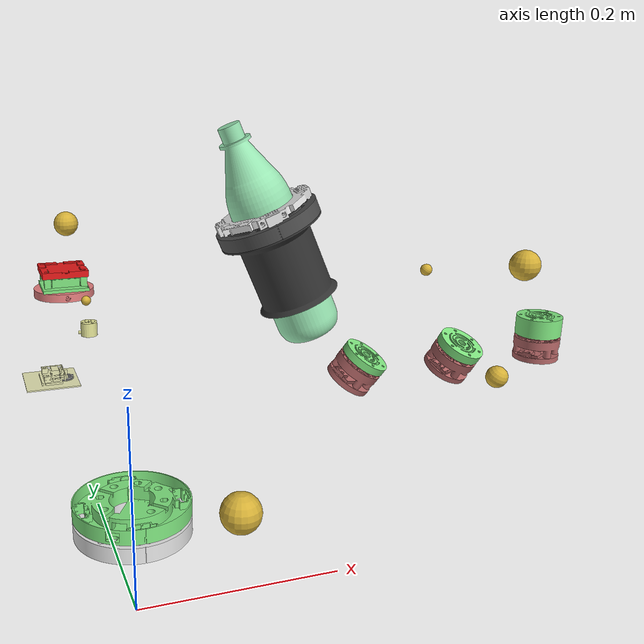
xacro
<?xml version="1.0" ?>
<robot
       xmlns:xacro="http://www.ros.org/wiki/xacro"
       name="all_ft_demo">

   <!-- combined URDF that instantiates all printed_ft sensors in one model -->

  <xacro:include filename="$(find tams_printed_ft)/urdf/ft_payload.xacro" />
  <xacro:include filename="$(find tams_printed_ft)/urdf/ft_sensor.xacro" />

  <xacro:include filename="$(find tams_printed_ft)/urdf/ati_nano17_ft.xacro" />

  <xacro:include filename="$(find tams_printed_ft)/urdf/adjustable_ft.xacro" />
  <xacro:include filename="$(find tams_printed_ft)/urdf/block_ft.xacro" />
  <xacro:include filename="$(find tams_printed_ft)/urdf/bottle_ft.xacro" />
  <xacro:include filename="$(find tams_printed_ft)/urdf/hex9904_ft.xacro" />
  <xacro:include filename="$(find tams_printed_ft)/urdf/pushing_box_ft.xacro" />

  <link name="world" />

  <!-- adjustable ft with 1.5kg payload -->

  <xacro:ft_control_plugin name="adjustable_ft" />

  <xacro:ft_sensor_plugin
     name="adjustable_ft"
     joint="sensor_joint"
     rate="200"
     topic="wrench" >
  </xacro:ft_sensor_plugin>

  <xacro:adjustable_ft name="adjustable_ft" />

  <joint name="world_adjustable_ft_joint" type="fixed">
    <parent link="world" />
    <child link="adjustable_ft" />
    <origin xyz="0 0 0.1" rpy="0 0 0" />
  </joint>

  <xacro:ft_payload_sphere  name="m1500g" mass="1.5" diameter="0.04">
    <cog_origin xyz="0 0 0" rpy="0 0 0"/>
  </xacro:ft_payload_sphere>

  <joint name="adjustable_ft_payload_joint" type="fixed">
    <parent link="adjustable_ft_tool_ring" />
    <child link="m1500g" />
    <origin xyz="0.1 0 0" rpy="0 0 0" />
  </joint>

  <!-- ATi nano17 reference sensor with 200g payload -->

  <xacro:ft_control_plugin name="ati_nano17_ft" />

  <xacro:ft_sensor_plugin
     name="ati_nano17_ft"
     joint="sensor_joint"
     rate="200"
     topic="wrench" >
  </xacro:ft_sensor_plugin>

  <xacro:ati_nano17_ft name="ati_nano17_ft" />

  <joint name="world_ati_nano17_ft_joint" type="fixed">
    <parent link="world" />
    <child link="ati_nano17_ft" />
    <origin xyz="0 0.2 0.2" rpy="0 0 0" />
  </joint>

  <xacro:ft_payload_sphere  name="m200g" mass="0.2" diameter="0.01">
    <cog_origin xyz="0 0 0" rpy="0 0 0"/>
  </xacro:ft_payload_sphere>

  <joint name="ati_nano17_ft_payload_joint" type="fixed">
    <parent link="ati_nano17_ft_tool_mount" />
    <child link="m200g" />
    <origin xyz="0 0.01 0.02" rpy="0 0 0" />
  </joint>

  <!-- bottle_ft sensor with 450g payload  -->

  <xacro:ft_control_plugin name="bottle_ft" />

  <xacro:ft_sensor_plugin
     name="bottle_ft"
     joint="sensor_joint"
     rate="200"
     topic="wrench" >
  </xacro:ft_sensor_plugin>

  <xacro:bottle_ft name="bottle_ft" />

  <joint name="world_bottle_ft_joint" type="fixed">
    <parent link="world" />
    <child link="bottle_ft" />
    <origin xyz="0.2 0.2 0.3" rpy="0 0.4 3.0" />
  </joint>

  <xacro:bottle_ft_bottle_500ml  name="bottle_500ml" />

  <joint name="bottle_ft_bottle_joint" type="fixed">
    <parent link="bottle_ft_upper_ring" />
    <child link="bottle_500ml" />
    <origin xyz="0 0 0" rpy="0 0 0" />
  </joint>

  <!-- block_ft sensor with 500g payload  -->

  <xacro:ft_control_plugin name="block_ft" />

  <xacro:ft_sensor_plugin
     name="block_ft"
     joint="sensor_joint"
     rate="200"
     topic="wrench" >
  </xacro:ft_sensor_plugin>

  <xacro:block_ft name="block_ft" />

  <xacro:block_ft_m3207_adapter  name="block_ft_m3207_adapter_plate" />

  <joint name="world_block_ft_m3207_adapter_joint" type="fixed">
    <parent link="world" />
    <child link="block_ft_m3207_adapter_plate" />
    <origin xyz="0 0.4 ${0.2-0.01}" rpy="0 0 0" />
  </joint>

  <joint name="world_block_ft_joint" type="fixed">
    <parent link="world" />
    <child link="block_ft" />
    <origin xyz="0 0.4 0.2" rpy="0 0 0" />
  </joint>

  <xacro:ft_payload_sphere  name="m1100g" mass="1.100" diameter="0.03">
    <cog_origin xyz="0 0 0" rpy="0 0 0"/>
  </xacro:ft_payload_sphere>

  <joint name="block_ft_payload_joint" type="fixed">
    <parent link="block_ft_tool_mount" />
    <child link="m1100g" />
    <origin xyz="0.01 0.02 0.05" rpy="0 0 0" />
  </joint>

  <!-- Gazebo demo of the hex9904 sensor with 07mm hat and 73g payload. -->

  <xacro:ft_control_plugin name="hex9904_07mm_ft" />

  <xacro:ft_sensor_plugin
     name="hex9904_07mm_ft"
     joint="sensor_joint"
     rate="200"
     topic="wrench" >
  </xacro:ft_sensor_plugin>

  <xacro:hex9904_ft name="hex9904" hat="07mm"  hat_mass="0.075" hat_height="0.007" />

  <xacro:ft_payload_sphere  name="m73g" mass="0.073" diameter="0.01">
    <cog_origin xyz="0 0 0" rpy="0 0 0"/>
  </xacro:ft_payload_sphere>

  <joint name="world_hex9904_07mm_ft_joint" type="fixed">
    <parent link="world" />
    <child link="hex9904_07mm_ft" />
    <origin xyz="0.2 0 0.2" rpy="0.3 0.5 0" />
  </joint>

  <joint name="hex9904_07mm_ft_payload_joint" type="fixed">
    <parent link="hex9904_07mm_ft_tool_mount" />
    <child link="m73g" />
    <origin xyz="0 0.01 0.1" rpy="0 0 0" />
  </joint>

  <!-- Gazebo demo of the hex9904 sensor with 10mm hat and 156g payload. -->

  <xacro:ft_control_plugin name="hex9904_10mm_ft" />

  <xacro:ft_sensor_plugin
     name="hex9904_10mm_ft"
     joint="sensor_joint"
     rate="200"
     topic="wrench" >
  </xacro:ft_sensor_plugin>

  <xacro:hex9904_ft name="hex9904" hat="10mm"  hat_mass = "0.110" hat_height="0.01" />

  <xacro:ft_payload_sphere  name="m156g" mass="0.156" diameter="0.02">
    <cog_origin xyz="0 0 0" rpy="0 0 0"/>
  </xacro:ft_payload_sphere>

  <joint name="world_hex9904_10mm_ft_joint" type="fixed">
    <parent link="world" />
    <child link="hex9904_10mm_ft" />
    <origin xyz="0.3 0 0.20" rpy="0.4 0.3 0" />
  </joint>

  <joint name="hex9904_10mm_ft_payload_joint" type="fixed">
    <parent link="hex9904_10mm_ft_tool_mount" />
    <child link="m156g" />
    <origin xyz="0.03 -0.03 0" rpy="0 0 0" />
  </joint>

  <!-- Gazebo demo of the hex9904 sensor with 20mm hat. -->

  <xacro:ft_control_plugin name="hex9904_20mm_ft" />

  <xacro:ft_sensor_plugin
     name="hex9904_20mm_ft"
     joint="sensor_joint"
     rate="200"
     topic="wrench" >
  </xacro:ft_sensor_plugin>

  <xacro:hex9904_ft name="hex9904" hat="20mm"  hat_mass = "0.150" hat_height="0.02" />

  <xacro:ft_payload_sphere  name="m777g" mass="0.377" diameter="0.03">
    <cog_origin xyz="0 0 0" rpy="0 0 0"/>
  </xacro:ft_payload_sphere>

  <joint name="world_hex9904_20mm_ft_joint" type="fixed">
    <parent link="world" />
    <child link="hex9904_20mm_ft" />
    <origin xyz="0.4 0 0.20" rpy="0 0 0" />
  </joint>

  <joint name="hex9904_20mm_ft_payload_joint" type="fixed">
    <parent link="hex9904_20mm_ft_tool_mount" />
    <child link="m777g" />
    <origin xyz="0 0.03 0.05" rpy="0 0 0" />
  </joint>

  <!-- basic ROS+gazebo demo of the "pushing_box-ft" -->

  <xacro:ft_control_plugin name="pushing_box_ft" />

  <xacro:ft_sensor_plugin
     name="pushing_box_ft"
     joint="sensor_joint"
     rate="200"
     topic="wrench" >
  </xacro:ft_sensor_plugin>

  <xacro:pushing_box_ft name="pushing_box_ft" />

  <joint name="world_pushing_box_ft_joint" type="fixed">
    <parent link="world" />
    <child link="pushing_box_ft" />
    <origin xyz="0 0.6 0" rpy="0 0 0" />
  </joint>

</robot>

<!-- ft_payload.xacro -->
<robot
       xmlns:xacro="http://www.ros.org/wiki/xacro"
       name="ft_paylaod">

<!-- configurable payload for static force/torque tests -->

<xacro:macro name="ft_payload_sphere" params="name mass *cog_origin diameter">
  <link name="${name}">
    <inertial>
      <xacro:insert_block name="cog_origin" />
      <mass value="${mass}" />
      <inertia  ixx="0.001" ixy="0" ixz="0" iyy="0.001" iyz="0" izz="0.001" />
    </inertial>
    <visual>
      <xacro:insert_block name="cog_origin" />
      <material name="ft_payload_gold" > 212,175,55
        <color rgba="${212/255} ${175/255} ${55/255} 1.0" />
      </material>
      <geometry>
         <sphere radius="${diameter/2}" />
      </geometry>
    </visual>
    <collision>
      <xacro:insert_block name="cog_origin" />
      <geometry>
         <sphere radius="${diameter/2}" />
      </geometry>
    </collision>
  </link>

  <gazebo reference="${name}">
      <material>Gazebo/Gold</material>
      <turnGravityOff>false</turnGravityOff>
      <selfCollide>false</selfCollide>
      <!-- kp: stiffness kd: damping mu1, mu2: friction -->
      <mu1>100.0</mu1>
      <mu2>100.0</mu2>
      <kp>1000000.0</kp>
      <kd>1.0</kd>
  </gazebo>
</xacro:macro>

</robot>

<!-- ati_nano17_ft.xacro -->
<robot xmlns:xacro="http://www.ros.org/wiki/xacro">

	<!-- Common tools: PI, inertias of a cuboid and cylinder -->
	<xacro:property name="M_PI" value="3.1415926535897931"/>

	<xacro:macro name="cuboid_inertia_def" params="width height length mass">
	  <inertia ixx="${mass * (height * height + length * length) / 12}"
			 iyy="${mass * (width * width + length * length) / 12}"
			 izz="${mass * (width * width + height * height) / 12}"
			 ixy="0" iyz="0" ixz="0"/>
	</xacro:macro>

	<xacro:macro name="cylinder_inertia_def" params="radius length mass">
	  <inertia ixx="${mass * (3 * radius * radius + length * length) / 12}"
			 iyy="${mass * radius* radius / 2}"
			 izz="${mass * (3 * radius * radius + length * length) / 12}"
			 ixy="0" iyz="0" ixz="0"/>
	</xacro:macro>

	<xacro:macro name="ati_nano17_ft" params="name" >
    <link name="${name}">
			<inertial>
				<mass value="0.00907"/>
				<origin xyz="0 0 0.00725"  />
				<xacro:cylinder_inertia_def radius="0.085" length="0.0145" mass="0.00907"/>
			</inertial>
			<visual>
				<!-- origin xyz="0 0 0.00725" rpy="0 0 0"/ -->
				<origin xyz="0 0 0" rpy="0 0 0"/>
        <material name="ati_nano17_silver">
          <color rgba="0.9 0.9 0.6 1.0" />
        </material>
				<geometry>
					<mesh filename="package://tams_printed_ft/meshes/ati_nano17.dae"/>
					<!-- cylinder radius="0.0085" length="0.0145"/ -->
				</geometry>
			</visual>
			<collision>
				<origin xyz="0 0 0.00725" rpy="0 0 0"/>
				<geometry>
					<cylinder radius="0.0085" length="0.0145"/>
				</geometry>
			</collision>
    </link>

    <gazebo reference="${name}">
      <material>Gazebo/Silver</material>
      <turnGravityOff>false</turnGravityOff>
      <selfCollide>false</selfCollide>
      <!-- kp: stiffness kd: damping mu1, mu2: friction -->
      <mu1>100.0</mu1>
      <mu2>100.0</mu2>
      <kp>1000000.0</kp>
      <kd>1.0</kd>
   </gazebo>

    <link name="${name}_sensor_frame">
		  <origin xyz="0 0 0.0145" rpy="0 0 0"/>
	  </link>

    <!-- type=floating, no axis required? -->
    <joint name="${name}_sensor_joint" type="revolute">
      <parent link="${name}" />
      <child link="${name}_sensor_frame" />
      <origin xyz="0 0 ${0.011}" rpy="0 0 0" />

      <axis xyz="1 0 0" rpy="0 0 0" />
      <dynamics damping="1.01" friction="0.05" />
      <limit lower="-0.001" upper="0.001" effort="100" velocity="1" />
    </joint>

    <transmission name="${name}_sensor_joint_transmission">
      <type>transmission_interface/SimpleTransmission</type>
      <joint name="${name}_sensor_joint">
        <hardwareInterface>hardware_interface/EffortJointInterface</hardwareInterface>
      </joint>
      <actuator name="${name}_sensor_joint_motor">
        <hardwareInterface>hardware_interface/EffortJointInterface</hardwareInterface>
        <mechanicalReduction>1</mechanicalReduction>
      </actuator>
    </transmission>

    <link name="${name}_tool_mount" />

    <joint name="${name}_tool_mount_joint" type="fixed">
      <parent link="${name}_sensor_frame" />
      <child link="${name}_tool_mount" />
      <origin xyz="0 0 ${0.0035}" rpy="0 0 0" />
    </joint>

	</xacro:macro>

  <!-- 17mm x 5m height cylinder -->
	<xacro:macro name="nano17_tool_plate">
			<inertial>
				<mass value="0.002"/>
				<origin xyz="0 0 0.0025"  />
				<xacro:cylinder_inertia_def radius="0.085" length="0.005" mass="0.002"/>
			</inertial>
			<visual>
				<!-- origin xyz="0 0 0.00725" rpy="0 0 0"/ -->
				<origin xyz="0 0 0.0025" rpy="0 0 0"/>
				<geometry>
					<cylinder radius="0.0085" length="0.005"/>
				</geometry>
			</visual>
			<collision>
				<origin xyz="0 0 0.0025" rpy="0 0 0"/>
				<geometry>
					<cylinder radius="0.0085" length="0.005"/>
				</geometry>
			</collision>
	</xacro:macro>

</robot>

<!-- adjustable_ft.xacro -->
<robot
       xmlns:xacro="http://www.ros.org/wiki/xacro"
       name="adjustable_ft">

<xacro:macro name="adjustable_ft" params="name" >

  <link name="${name}">
    <inertial>
      <origin xyz="0 0 ${0.014/2}" />
      <mass value="0.7" />
      <inertia  ixx="0.0001" ixy="0" ixz="0" iyy="0.0001" iyz="0" izz="0.00005" />
      </inertial>
      <visual>
        <origin xyz="0 0 ${-0.018}" />
        <material name="dummy" >
          <color rgba="0.5 0.9 0.5 1.0" />
        </material>
        <geometry>
          <mesh filename="package://tams_printed_ft/meshes/adjustable_ft_upper_ring.dae" scale="0.001 0.001 0.001" />
        </geometry>
      </visual>
      <collision>
        <origin xyz="0 0 ${0.014/2}" />
        <geometry>
          <cylinder radius="${0.104/2}" length="0.014" />
        </geometry>
    </collision>
  </link>

  <gazebo reference="${name}">
      <material>Gazebo/Green</material>
      <turnGravityOff>false</turnGravityOff>
      <selfCollide>false</selfCollide>
      <!-- kp: stiffness kd: damping mu1, mu2: friction -->
      <mu1>100.0</mu1>
      <mu2>100.0</mu2>
      <kp>1000000.0</kp>
      <kd>1.0</kd>
  </gazebo>

  <link name="${name}_tool_ring">
    <inertial>
      <origin xyz="1 0 ${0.018/2}" />
      <mass value="0.15" />
      <inertia  ixx="0.00002" ixy="0" ixz="0" iyy="0.00002" iyz="0" izz="0.00001" />
    </inertial>
    <visual>
        <origin xyz="0 0 0" />
        <material name="silver" >
          <color rgba="0.9 0.9 0.9 1.0" />
        </material>
        <geometry>
          <mesh filename="package://tams_printed_ft/meshes/adjustable_ft_base_ring.dae" scale="0.001 0.001 0.001" />
        </geometry>
      </visual>
      <collision>
        <origin xyz="0 0 ${0.016/2}" />
        <geometry>
          <cylinder radius="${0.104/2}" length="0.016" />
        </geometry>
      </collision>
  </link>

  <gazebo reference="${name}_tool_ring">
      <material>Gazebo/White</material>
      <turnGravityOff>false</turnGravityOff>
      <selfCollide>false</selfCollide>
      <!-- kp: stiffness kd: damping mu1, mu2: friction -->
      <mu1>100.0</mu1>
      <mu2>100.0</mu2>
      <kp>1000000.0</kp>
      <kd>1.0</kd>
  </gazebo>

  <!-- fucking controller requires a namespace followed by SLASH -->
  <!-- type=floating, no axis required -->
  <joint name="${name}_sensor_joint" type="revolute">
    <parent link="adjustable_ft" />
    <child link="adjustable_ft_tool_ring" />
    <origin xyz="0 0 ${-0.018}" rpy="0 0 0" />

    <axis xyz="1 0 0" rpy="0 0 0" />
    <dynamics damping="1.01" friction="0.05" />
    <limit lower="-0.02" upper="0.02" effort="100" velocity="1" />
    <safety_controller soft_lower_limit="-0.001" soft_upper_limit="0.001" k_position="1" k_velocity="1" />
  </joint>

  <transmission name="${name}_sensor_joint_transmission">
    <type>transmission_interface/SimpleTransmission</type>
    <joint name="${name}_sensor_joint">
      <hardwareInterface>hardware_interface/EffortJointInterface</hardwareInterface>
    </joint>
    <actuator name="${name}_sensor_joint_motor">
      <hardwareInterface>hardware_interface/EffortJointInterface</hardwareInterface>
      <mechanicalReduction>1</mechanicalReduction>
    </actuator>
  </transmission>

</xacro:macro>

</robot>

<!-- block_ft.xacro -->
<robot
       xmlns:xacro="http://www.ros.org/wiki/xacro"
       name="block_ft">

<xacro:macro name="block_ft" params="name" >

  <link name="${name}">
    <inertial>
      <origin xyz="0 0 ${0.009}" />
      <mass value="0.15" />
      <inertia  ixx="0.0002" ixy="0" ixz="0" iyy="0.0002" iyz="0" izz="0.0002" />
      </inertial>
      <visual>
        <origin xyz="0 0 0" />
        <material name="green_pla_filament" >
          <color rgba="0.5 0.9 0.5 1.0" />
        </material>
        <geometry>
          <mesh filename="package://tams_printed_ft/meshes/block_ft_base_and_elastic.dae" scale="0.001 0.001 0.001" />
        </geometry>
      </visual>
      <collision>
        <!-- 2mm shorter to provide visual gap between base and tool parts -->
        <origin xyz="0 0 ${0.008}" />
        <geometry>
          <box size="0.056 0.056 0.016" />
        </geometry>
    </collision>
  </link>

  <gazebo reference="${name}">
      <material>Gazebo/Green</material>
      <turnGravityOff>false</turnGravityOff>
      <selfCollide>false</selfCollide>
      <!-- kp: stiffness kd: damping mu1, mu2: friction -->
      <mu1>100.0</mu1>
      <mu2>100.0</mu2>
      <kp>1000000.0</kp>
      <kd>1.0</kd>
  </gazebo>

  <link name="${name}_tool_plate">
    <inertial>
      <origin xyz="1 0 ${0.008/2}" />
      <mass value="0.05" />
      <inertia  ixx="0.00001" ixy="0" ixz="0" iyy="0.00001" iyz="0" izz="0.00002" />
    </inertial>
    <visual>
        <origin xyz="0 0 -0.018" /> <!-- compensate mesh z-offset -->
        <material name="red_pla_filament" >
          <color rgba="0.9 0.1 0.1 1.0" />
        </material>
        <geometry>
          <mesh filename="package://tams_printed_ft/meshes/block_ft_cover_ring_and_pattern_plate.dae" scale="0.001 0.001 0.001" />
        </geometry>
      </visual>
      <collision>
        <origin xyz="0 0 ${0.008/2}" />
        <geometry>
          <box size="0.056 0.056 0.008" />
        </geometry>
      </collision>
  </link>

  <gazebo reference="${name}_tool_plate">
      <material>Gazebo/Red</material>
      <turnGravityOff>false</turnGravityOff>
      <selfCollide>false</selfCollide>
      <!-- kp: stiffness kd: damping mu1, mu2: friction -->
      <mu1>100.0</mu1>
      <mu2>100.0</mu2>
      <kp>1000000.0</kp>
      <kd>1.0</kd>
  </gazebo>

  <!-- type=floating, no axis required -->
  <joint name="${name}_sensor_joint" type="revolute">
    <parent link="${name}" />
    <child link="${name}_tool_plate" />
    <origin xyz="0 0 ${0.018}" rpy="0 0 0" />

    <axis xyz="1 0 0" rpy="0 0 0" />
    <dynamics damping="1.01" friction="0.05" />
    <limit lower="-0.02" upper="0.02" effort="100" velocity="1" />
    <safety_controller soft_lower_limit="-0.001" soft_upper_limit="0.001" k_position="1" k_velocity="1" />
  </joint>

  <transmission name="${name}_sensor_joint_transmission">
    <type>transmission_interface/SimpleTransmission</type>
    <joint name="${name}_sensor_joint">
      <hardwareInterface>hardware_interface/EffortJointInterface</hardwareInterface>
    </joint>
    <actuator name="${name}_sensor_joint_motor">
      <hardwareInterface>hardware_interface/EffortJointInterface</hardwareInterface>
      <mechanicalReduction>1</mechanicalReduction>
    </actuator>
  </transmission>

  <link name="${name}_tool_mount" />

  <joint name="${name}_tool_mount_joint" type="fixed">
    <parent link="${name}_tool_plate" />
    <child link="${name}_tool_mount" />
    <origin xyz="0 0 ${0.008}" rpy="0 0 0" />
  </joint>

</xacro:macro>

<!-- model of the d=74 h=10 two-part inner/outer adapter plate for the Sunrise M3207 sensor -->
<xacro:macro name="block_ft_m3207_adapter" params="name" >

  <link name="${name}">
    <inertial>
      <origin xyz="0 0 0.005" />
      <mass value="0.10" />
      <inertia  ixx="0.0001" ixy="0" ixz="0" iyy="0.0001" iyz="0" izz="0.0002" />
      </inertial>
      <visual>
        <origin xyz="0 0 0.01" /> <!-- mesh origin is at the top -->
        <material name="red_pla_filament" >
          <color rgba="0.9 0.5 0.5 1.0" />
        </material>
        <geometry>
          <mesh filename="package://tams_printed_ft/meshes/block_ft_sunrise_mounting_plate_74x10.dae" scale="0.001 0.001 0.001" />
        </geometry>
      </visual>
      <collision>
        <!-- 2mm shorter to provide visual gap between base and tool parts -->
        <origin xyz="0 0 0.005" />
        <geometry>
          <cylinder radius="${0.074/2}" length="0.01" />
        </geometry>
    </collision>
  </link>

  <gazebo reference="${name}">
      <material>Gazebo/Gray</material>
      <turnGravityOff>false</turnGravityOff>
      <selfCollide>false</selfCollide>
      <!-- kp: stiffness kd: damping mu1, mu2: friction -->
      <mu1>100.0</mu1>
      <mu2>100.0</mu2>
      <kp>1000000.0</kp>
      <kd>1.0</kd>
  </gazebo>

</xacro:macro>

</robot>

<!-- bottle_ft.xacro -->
<robot
       xmlns:xacro="http://www.ros.org/wiki/xacro"
       name="bottle_ft">

<xacro:macro name="bottle_ft" params="name" >

  <link name="${name}">
    <!-- base ring height: outer 15mm, inner 18mm, fins~22mm, diameter 114mm -->
    <inertial>
      <origin xyz="0 0 ${0.016/2}" /> <!-- CoG is lower than total height -->
      <mass value="0.2" />
      <inertia  ixx="0.0001" ixy="0" ixz="0" iyy="0.0001" iyz="0" izz="0.00005" />
    </inertial>
    <visual>
      <origin xyz="0 0 0" />
      <material name="bottle_ft_gray" >
        <color rgba="0.3 0.3 0.3 1.0" />
      </material>
      <geometry>
        <mesh filename="package://tams_printed_ft/meshes/bottle-six-axis-ft-v2-base-ring-h15.dae" scale="0.001 0.001 0.001" />
      </geometry>
    </visual>
    <collision>
      <origin xyz="0 0 ${0.015/2}" /> <!-- outer height, 3mm gap to upper ring -->
      <geometry>
        <cylinder radius="${0.114/2}" length="0.015" />
      </geometry>
    </collision>
  </link>

  <gazebo reference="${name}">
    <material>Gazebo/Black</material>
    <turnGravityOff>false</turnGravityOff>
    <selfCollide>false</selfCollide>
    <!-- kp: stiffness kd: damping mu1, mu2: friction -->
    <mu1>100.0</mu1>
    <mu2>100.0</mu2>
    <kp>1000000.0</kp>
    <kd>1.0</kd>
  </gazebo>

  <link name="bottle_ft_upper_ring">
    <!-- effective height 8mm, outer diameter 108mm -->
    <inertial>
      <origin xyz="0 0 ${0.008/2}" />
      <mass value="0.10" />
      <inertia  ixx="0.00002" ixy="0" ixz="0" iyy="0.00002" iyz="0" izz="0.00001" />
    </inertial>
    <visual>
      <!-- note: this mesh is translated by (0,0,0.018) from the origin -->
      <origin xyz="0 0 -0.018" />
      <material name="silver" >
        <color rgba="0.9 0.9 0.9 1.0" />
      </material>
      <geometry>
        <mesh filename="package://tams_printed_ft/meshes/bottle-six-axis-ft-v2-upper-ring-sensor-modules-arduino.dae" scale="0.001 0.001 0.001" />
      </geometry>
    </visual>
    <collision>
      <origin xyz="0 0 ${0.008/2}" />
      <geometry>
        <cylinder radius="${0.108/2}" length="0.008" />
      </geometry>
    </collision>
  </link>

  <gazebo reference="bottle_ft_upper_ring">
      <material>Gazebo/White</material>
      <turnGravityOff>false</turnGravityOff>
      <selfCollide>false</selfCollide>
      <!-- kp: stiffness kd: damping mu1, mu2: friction -->
      <mu1>100.0</mu1>
      <mu2>100.0</mu2>
      <kp>1000000.0</kp>
      <kd>1.0</kd>
  </gazebo>

  <!-- type=floating, no axis required -->
  <joint name="${name}_sensor_joint" type="revolute">
    <parent link="${name}" />
    <child link="${name}_upper_ring" />
    <origin xyz="0 0 ${0.018}" rpy="0 0 0" />
    <axis xyz="1 0 0" rpy="0 0 0" />
    <dynamics damping="1.01" friction="0.05" />
    <limit lower="-0.02" upper="0.02" effort="100" velocity="1" />
    <safety_controller soft_lower_limit="-0.001" soft_upper_limit="0.001" k_position="1" k_velocity="1" />
  </joint>

  <transmission name="${name}_sensor_joint_transmission">
    <type>transmission_interface/SimpleTransmission</type>
    <joint name="${name}_sensor_joint">
      <hardwareInterface>hardware_interface/EffortJointInterface</hardwareInterface>
    </joint>
    <actuator name="${name}_sensor_joint_motor">
      <hardwareInterface>hardware_interface/EffortJointInterface</hardwareInterface>
      <mechanicalReduction>1</mechanicalReduction>
    </actuator>
  </transmission>

  <link name="bottle_ft_grasp_handle">
    <!-- main diameter of grasp handle: 70 + 2*2.5 = 75mm -->
    <inertial>
      <origin xyz="0 0 -0.035" />
      <mass value="0.15" />
      <inertia  ixx="0.00002" ixy="0" ixz="0" iyy="0.00002" iyz="0" izz="0.00001" />
    </inertial>
    <visual>
      <origin xyz="0 0 0" />
      <material name="bottle_ft_gray" >
        <color rgba="0.2 0.2 0.2 1.0" />
      </material>
      <geometry>
       <mesh filename="package://tams_printed_ft/meshes/bottle-six-axis-ft-v2-grasp-handle-70mm.dae" scale="0.001 0.001 0.001" />
      </geometry>
    </visual>
    <collision>
      <origin xyz="0 0 0" />
      <geometry>
        <mesh filename="package://tams_printed_ft/meshes/bottle-six-axis-ft-v2-grasp-handle-70mm.dae" scale="0.001 0.001 0.001" />
      </geometry>
    </collision>
  </link>

  <gazebo reference="bottle_ft_grasp_handle">
    <material>Gazebo/Black</material>
    <turnGravityOff>false</turnGravityOff>
    <selfCollide>false</selfCollide>
    <!-- kp: stiffness kd: damping mu1, mu2: friction -->
    <mu1>100.0</mu1>
    <mu2>100.0</mu2>
    <kp>1000000.0</kp>
    <kd>1.0</kd>
  </gazebo>

  <joint name="bottle_ft_grasp_handle_joint" type="fixed">
    <parent link="bottle_ft" />
    <child link="bottle_ft_grasp_handle" />
    <origin xyz="0 0 0" rpy="0 0 0" />
  </joint>

</xacro:macro>

<xacro:macro name="bottle_ft_bottle_500ml" params="name" >

  <link name="${name}">
    <inertial>
      <origin xyz="0 0 0" />
      <mass value="0.520" />
      <inertia  ixx="0.00002" ixy="0" ixz="0" iyy="0.00002" iyz="0" izz="0.00001" />
    </inertial>
    <visual>
      <origin xyz="0 0 0.1" />
      <material name="bottle_plastic" >
        <color rgba="0.6 0.9 0.7 1.0" />
      </material>
      <geometry>
       <mesh filename="package://tams_printed_ft/meshes/bottle_500ml.dae" scale="0.97 0.97 0.97" />
      </geometry>
    </visual>
    <collision>
      <origin xyz="0 0 0" />
      <geometry>
        <cylinder radius="${0.07/2}" length="0.2" />
      </geometry>
    </collision>
  </link>

  <gazebo reference="${name}">
    <material>Gazebo/White</material>
    <turnGravityOff>false</turnGravityOff>
    <selfCollide>false</selfCollide>
    <!-- kp: stiffness kd: damping mu1, mu2: friction -->
    <mu1>100.0</mu1>
    <mu2>100.0</mu2>
    <kp>1000000.0</kp>
    <kd>1.0</kd>
  </gazebo>

</xacro:macro>

</robot>

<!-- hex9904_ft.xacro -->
<robot
       xmlns:xacro="http://www.ros.org/wiki/xacro"
       name="hex9904_ft">

<xacro:macro name="hex9904_ft" params="name hat hat_height hat_mass" >

  <link name="${name}_${hat}_ft_hat">
    <inertial>
      <origin xyz="0 0 ${hat_height/2}" />
      <mass value="${hat_mass}" />
      <inertia  ixx="0.0001" ixy="0" ixz="0" iyy="0.0001" iyz="0" izz="0.00005" />
      </inertial>
      <visual>
        <origin xyz="0 0 0" />
        <material name="dummy" >
          <color rgba="0.5 0.9 0.5 1.0" />
        </material>
        <geometry>
          <mesh filename="package://tams_printed_ft/meshes/hex9904_hat_${hat}.dae" scale="0.001 0.001 0.001" />
        </geometry>
      </visual>
      <collision>
        <origin xyz="0 0 ${hat_height}" />
        <geometry>
          <cylinder radius="${0.045/2}" length="${hat_height}" />
        </geometry>
    </collision>
  </link>

  <gazebo reference="${name}_${hat}_ft_hat">
      <material>Gazebo/White</material>
      <turnGravityOff>false</turnGravityOff>
      <selfCollide>false</selfCollide>
      <!-- kp: stiffness kd: damping mu1, mu2: friction -->
      <mu1>100.0</mu1>
      <mu2>100.0</mu2>
      <kp>1000000.0</kp>
      <kd>1.0</kd>
  </gazebo>

  <link name="${name}_${hat}_ft">
    <!-- base ring size: diameter 43mm, height 22+23mm. -->
    <inertial>
      <origin xyz="0 0 ${(0.013+0.008)/2}" />
      <mass value="0.2" />
      <inertia  ixx="0.0001" ixy="0" ixz="0" iyy="0.0001" iyz="0" izz="0.00005" />
      </inertial>
      <visual>
        <origin xyz="0 0 0.013" /> <!-- mesh centered at bottom of base plate -->
        <material name="dummy" >
          <color rgba="0.7 0.4 0.4 1.0" />
        </material>
        <geometry>
          <mesh filename="package://tams_printed_ft/meshes/hex9904_baseplate_groundplate.dae" scale="0.001 0.001 0.001" />
        </geometry>
      </visual>
      <collision>
        <origin xyz="0 0 ${(0.013+0.008)/2}" />
        <geometry>
          <cylinder radius="${0.042/2+0.002}" length="0.021" />
        </geometry>
    </collision>
  </link>

  <gazebo reference="${name}_${hat}_ft">
      <material>Gazebo/Black</material>
      <turnGravityOff>false</turnGravityOff>
      <selfCollide>false</selfCollide>
      <!-- kp: stiffness kd: damping mu1, mu2: friction -->
      <mu1>100.0</mu1>
      <mu2>100.0</mu2>
      <kp>1000000.0</kp>
      <kd>1.0</kd>
  </gazebo>

  <!-- maybe try: type=floating, no axis required -->
  <joint name="${name}_${hat}_ft_sensor_joint" type="revolute">
    <parent link="${name}_${hat}_ft" />
    <child link="${name}_${hat}_ft_hat" />
    <origin xyz="0 0 ${0.013+0.001}" rpy="0 0 0" />

    <axis xyz="1 0 0" rpy="0 0 0" />
    <dynamics damping="1.01" friction="0.05" />
    <limit lower="-0.02" upper="0.02" effort="100" velocity="1" />
    <safety_controller soft_lower_limit="-0.001" soft_upper_limit="0.001" k_position="1" k_velocity="1" />
  </joint>

  <transmission name="${name}_${hat}_ft_sensor_joint_transmission">
    <type>transmission_interface/SimpleTransmission</type>
    <joint name="${name}_${hat}_ft_sensor_joint">
      <hardwareInterface>hardware_interface/EffortJointInterface</hardwareInterface>
    </joint>
    <actuator name="${name}_${hat}_ft_sensor_joint_motor">
      <hardwareInterface>hardware_interface/EffortJointInterface</hardwareInterface>
      <mechanicalReduction>1</mechanicalReduction>
    </actuator>
  </transmission>

  <link name="${name}_${hat}_ft_tool_mount" />

  <joint name="${name}_${hat}_ft_tool_mount_joint" type="fixed">
    <parent link="${name}_${hat}_ft_hat" />
    <child link="${name}_${hat}_ft_tool_mount" />
    <origin xyz="0 0 ${hat_height}" rpy="0 0 0" />
  </joint>

</xacro:macro>

</robot>

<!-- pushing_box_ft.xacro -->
<robot
       xmlns:xacro="http://www.ros.org/wiki/xacro"
       name="pushing_box_ft">

<xacro:macro name="pushing_box_ft" params="name" >

  <link name="${name}">
    <inertial>
      <origin xyz="0 0 ${0.005}" />
      <mass value="0.05" /> <!-- roughly 50 grams (w a bit of cable) -->
      <inertia  ixx="0.0001" ixy="0" ixz="0" iyy="0.0001" iyz="0" izz="0.00005" />
    </inertial>
    <visual>
        <origin xyz="0 0 ${0.0}" />
        <material name="dummy" >
          <color rgba="0.9 0.9 0.7 1.0" />
        </material>
        <geometry>
          <mesh filename="package://tams_printed_ft/meshes/pushing-box-complete-without-probe.dae" scale="0.001 0.001 0.001" />
        </geometry>
    </visual>
    <collision>
        <origin xyz="0 0 ${0.0}" />
        <material name="dummy" >
          <color rgba="0.9 0.9 0.7 1.0" />
        </material>
        <geometry>
          <mesh filename="package://tams_printed_ft/meshes/pushing-box-complete-without-probe.dae" scale="0.001 0.001 0.001" />
        </geometry>
    </collision>
  </link>

  <gazebo reference="${name}">
      <material>Gazebo/Green</material>
      <turnGravityOff>false</turnGravityOff>
      <selfCollide>false</selfCollide>
      <!-- kp: stiffness kd: damping mu1, mu2: friction -->
      <mu1>100.0</mu1>
      <mu2>100.0</mu2>
      <kp>1000000.0</kp>
      <kd>1.0</kd>
  </gazebo>

  <link name="${name}_probe">
    <inertial>
      <origin xyz="1 0 ${0.005/2}" />
      <mass value="0.009" />  <!-- 2 5-cent coins 3.92 grams each-->
      <inertia  ixx="0.00002" ixy="0" ixz="0" iyy="0.00002" iyz="0" izz="0.00001" />
    </inertial>
    <visual>
        <origin xyz="0 0 0.004" />
        <material name="dark_gray_coins_holder" >
          <color rgba="0.6 0.6 0.6 1.0" />
        </material>
        <geometry>
          <mesh filename="package://tams_printed_ft/meshes/pushing-box-coins-holder.dae" scale="0.001 0.001 0.001" />
        </geometry>
      </visual>
      <collision>
        <origin xyz="0 0 ${0.005/2}" />
        <geometry>
          <cylinder radius="${0.028/2}" length="0.005" />
        </geometry>
      </collision>
  </link>

  <gazebo reference="${name}_probe">
      <material>Gazebo/White</material>
      <turnGravityOff>false</turnGravityOff>
      <selfCollide>false</selfCollide>
      <!-- kp: stiffness kd: damping mu1, mu2: friction -->
      <mu1>100.0</mu1>
      <mu2>100.0</mu2>
      <kp>1000000.0</kp>
      <kd>1.0</kd>
  </gazebo>

  <!-- fucking controller requires a namespace followed by SLASH -->
  <!-- type=floating, no axis required -->
  <joint name="${name}_sensor_joint" type="prismatic">
    <parent link="${name}" />
    <child link="${name}_probe" />
    <origin xyz="0.015 0.001 ${-0.001}" rpy="0 0 0" />

    <axis xyz="1 0 0" rpy="0 0 0" />
    <dynamics damping="0.1" friction="0.05" />
    <limit lower="-0.001" upper="0.001" effort="0.1" velocity="1" />
    <safety_controller soft_lower_limit="-0.001" soft_upper_limit="0.001" k_position="1" k_velocity="1" />
  </joint>

  <transmission name="${name}_sensor_joint_transmission">
    <type>transmission_interface/SimpleTransmission</type>
    <joint name="${name}_sensor_joint">
      <hardwareInterface>hardware_interface/EffortJointInterface</hardwareInterface>
    </joint>
    <actuator name="${name}_sensor_joint_motor">
      <hardwareInterface>hardware_interface/EffortJointInterface</hardwareInterface>
      <mechanicalReduction>1</mechanicalReduction>
    </actuator>
  </transmission>

</xacro:macro>

</robot>
